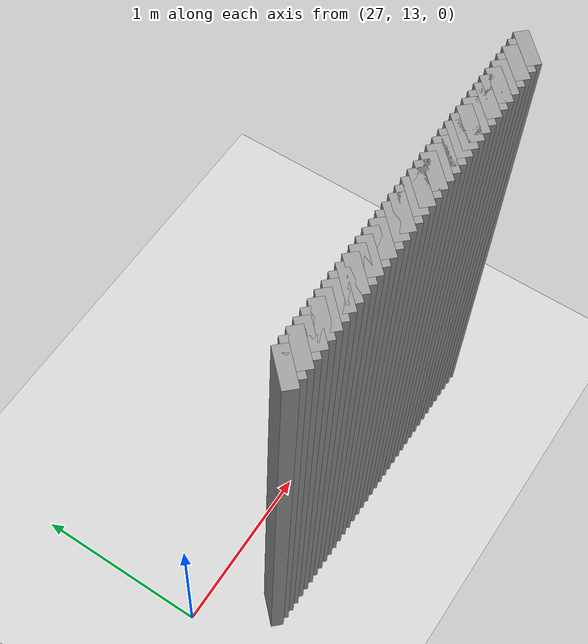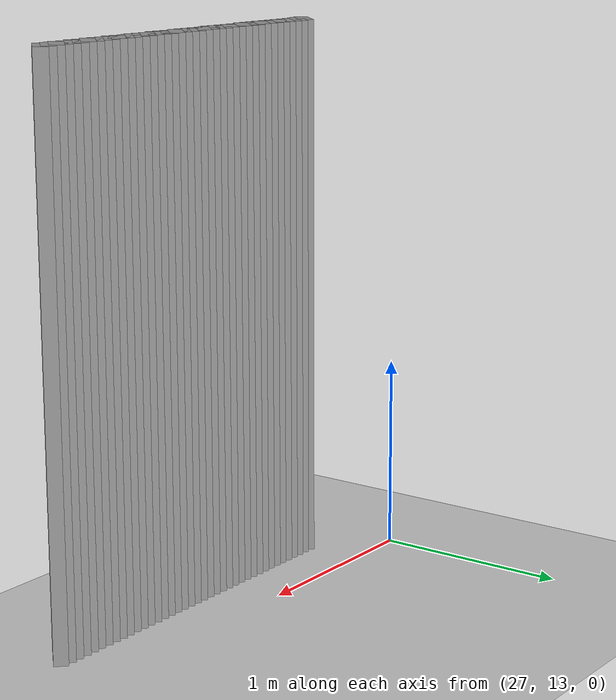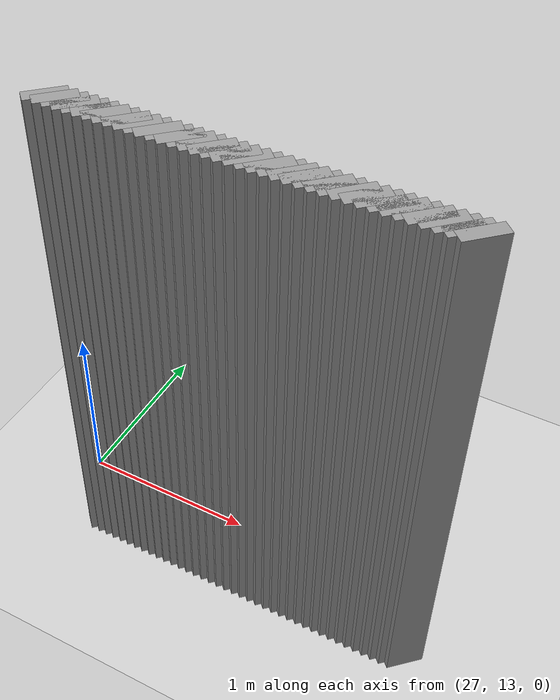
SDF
<sdf version="1.5">
 <world name="default">
  <include><uri>model://ground_plane</uri></include>
  <include><uri>model://sun</uri></include>
  <model name="grey_wall_2325">
   <static>1</static>
   <link name="link">
    <pose>27.3 12.65  1.4 0 0 -0.785398163397</pose>
    <collision name="collision"><geometry><box><size>0.0707106781187 .2  2.8</size></box></geometry></collision>
    <visual name="visual">
     <cast_shadows>0</cast_shadows>
     <geometry><box><size>0.0707106781187 .2  2.8</size></box></geometry>
     <material>
      <script>
       <uri>model://grey_wall/materials/scripts</uri>
       <uri>model://grey_wall/materials/textures</uri>
       <name>vrc/grey_wall</name>
      </script>
     </material>
    </visual>
   </link>
  </model>
  <model name="grey_wall_2326">
   <static>1</static>
   <link name="link">
    <pose>27.35 12.65  1.4 0 0 -0.785398163397</pose>
    <collision name="collision"><geometry><box><size>0.0707106781187 .2  2.8</size></box></geometry></collision>
    <visual name="visual">
     <cast_shadows>0</cast_shadows>
     <geometry><box><size>0.0707106781187 .2  2.8</size></box></geometry>
     <material>
      <script>
       <uri>model://grey_wall/materials/scripts</uri>
       <uri>model://grey_wall/materials/textures</uri>
       <name>vrc/grey_wall</name>
      </script>
     </material>
    </visual>
   </link>
  </model>
  <model name="grey_wall_2327">
   <static>1</static>
   <link name="link">
    <pose>27.4 12.65  1.4 0 0 -0.785398163397</pose>
    <collision name="collision"><geometry><box><size>0.0707106781187 .2  2.8</size></box></geometry></collision>
    <visual name="visual">
     <cast_shadows>0</cast_shadows>
     <geometry><box><size>0.0707106781187 .2  2.8</size></box></geometry>
     <material>
      <script>
       <uri>model://grey_wall/materials/scripts</uri>
       <uri>model://grey_wall/materials/textures</uri>
       <name>vrc/grey_wall</name>
      </script>
     </material>
    </visual>
   </link>
  </model>
  <model name="grey_wall_2328">
   <static>1</static>
   <link name="link">
    <pose>27.45 12.65  1.4 0 0 -0.785398163397</pose>
    <collision name="collision"><geometry><box><size>0.0707106781187 .2  2.8</size></box></geometry></collision>
    <visual name="visual">
     <cast_shadows>0</cast_shadows>
     <geometry><box><size>0.0707106781187 .2  2.8</size></box></geometry>
     <material>
      <script>
       <uri>model://grey_wall/materials/scripts</uri>
       <uri>model://grey_wall/materials/textures</uri>
       <name>vrc/grey_wall</name>
      </script>
     </material>
    </visual>
   </link>
  </model>
  <model name="grey_wall_2329">
   <static>1</static>
   <link name="link">
    <pose>27.5 12.65  1.4 0 0 -0.785398163397</pose>
    <collision name="collision"><geometry><box><size>0.0707106781187 .2  2.8</size></box></geometry></collision>
    <visual name="visual">
     <cast_shadows>0</cast_shadows>
     <geometry><box><size>0.0707106781187 .2  2.8</size></box></geometry>
     <material>
      <script>
       <uri>model://grey_wall/materials/scripts</uri>
       <uri>model://grey_wall/materials/textures</uri>
       <name>vrc/grey_wall</name>
      </script>
     </material>
    </visual>
   </link>
  </model>
  <model name="grey_wall_2330">
   <static>1</static>
   <link name="link">
    <pose>27.55 12.65  1.4 0 0 -0.785398163397</pose>
    <collision name="collision"><geometry><box><size>0.0707106781187 .2  2.8</size></box></geometry></collision>
    <visual name="visual">
     <cast_shadows>0</cast_shadows>
     <geometry><box><size>0.0707106781187 .2  2.8</size></box></geometry>
     <material>
      <script>
       <uri>model://grey_wall/materials/scripts</uri>
       <uri>model://grey_wall/materials/textures</uri>
       <name>vrc/grey_wall</name>
      </script>
     </material>
    </visual>
   </link>
  </model>
  <model name="grey_wall_2331">
   <static>1</static>
   <link name="link">
    <pose>27.6 12.65  1.4 0 0 -0.785398163397</pose>
    <collision name="collision"><geometry><box><size>0.0707106781187 .2  2.8</size></box></geometry></collision>
    <visual name="visual">
     <cast_shadows>0</cast_shadows>
     <geometry><box><size>0.0707106781187 .2  2.8</size></box></geometry>
     <material>
      <script>
       <uri>model://grey_wall/materials/scripts</uri>
       <uri>model://grey_wall/materials/textures</uri>
       <name>vrc/grey_wall</name>
      </script>
     </material>
    </visual>
   </link>
  </model>
  <model name="grey_wall_2332">
   <static>1</static>
   <link name="link">
    <pose>27.65 12.65  1.4 0 0 -0.785398163397</pose>
    <collision name="collision"><geometry><box><size>0.0707106781187 .2  2.8</size></box></geometry></collision>
    <visual name="visual">
     <cast_shadows>0</cast_shadows>
     <geometry><box><size>0.0707106781187 .2  2.8</size></box></geometry>
     <material>
      <script>
       <uri>model://grey_wall/materials/scripts</uri>
       <uri>model://grey_wall/materials/textures</uri>
       <name>vrc/grey_wall</name>
      </script>
     </material>
    </visual>
   </link>
  </model>
  <model name="grey_wall_2333">
   <static>1</static>
   <link name="link">
    <pose>27.7 12.65  1.4 0 0 -0.785398163397</pose>
    <collision name="collision"><geometry><box><size>0.0707106781187 .2  2.8</size></box></geometry></collision>
    <visual name="visual">
     <cast_shadows>0</cast_shadows>
     <geometry><box><size>0.0707106781187 .2  2.8</size></box></geometry>
     <material>
      <script>
       <uri>model://grey_wall/materials/scripts</uri>
       <uri>model://grey_wall/materials/textures</uri>
       <name>vrc/grey_wall</name>
      </script>
     </material>
    </visual>
   </link>
  </model>
  <model name="grey_wall_2334">
   <static>1</static>
   <link name="link">
    <pose>27.75 12.65  1.4 0 0 -0.785398163397</pose>
    <collision name="collision"><geometry><box><size>0.0707106781187 .2  2.8</size></box></geometry></collision>
    <visual name="visual">
     <cast_shadows>0</cast_shadows>
     <geometry><box><size>0.0707106781187 .2  2.8</size></box></geometry>
     <material>
      <script>
       <uri>model://grey_wall/materials/scripts</uri>
       <uri>model://grey_wall/materials/textures</uri>
       <name>vrc/grey_wall</name>
      </script>
     </material>
    </visual>
   </link>
  </model>
  <model name="grey_wall_2335">
   <static>1</static>
   <link name="link">
    <pose>27.8 12.65  1.4 0 0 -0.785398163397</pose>
    <collision name="collision"><geometry><box><size>0.0707106781187 .2  2.8</size></box></geometry></collision>
    <visual name="visual">
     <cast_shadows>0</cast_shadows>
     <geometry><box><size>0.0707106781187 .2  2.8</size></box></geometry>
     <material>
      <script>
       <uri>model://grey_wall/materials/scripts</uri>
       <uri>model://grey_wall/materials/textures</uri>
       <name>vrc/grey_wall</name>
      </script>
     </material>
    </visual>
   </link>
  </model>
  <model name="grey_wall_2336">
   <static>1</static>
   <link name="link">
    <pose>27.85 12.65  1.4 0 0 -0.785398163397</pose>
    <collision name="collision"><geometry><box><size>0.0707106781187 .2  2.8</size></box></geometry></collision>
    <visual name="visual">
     <cast_shadows>0</cast_shadows>
     <geometry><box><size>0.0707106781187 .2  2.8</size></box></geometry>
     <material>
      <script>
       <uri>model://grey_wall/materials/scripts</uri>
       <uri>model://grey_wall/materials/textures</uri>
       <name>vrc/grey_wall</name>
      </script>
     </material>
    </visual>
   </link>
  </model>
  <model name="grey_wall_2337">
   <static>1</static>
   <link name="link">
    <pose>27.9 12.65  1.4 0 0 -0.785398163397</pose>
    <collision name="collision"><geometry><box><size>0.0707106781187 .2  2.8</size></box></geometry></collision>
    <visual name="visual">
     <cast_shadows>0</cast_shadows>
     <geometry><box><size>0.0707106781187 .2  2.8</size></box></geometry>
     <material>
      <script>
       <uri>model://grey_wall/materials/scripts</uri>
       <uri>model://grey_wall/materials/textures</uri>
       <name>vrc/grey_wall</name>
      </script>
     </material>
    </visual>
   </link>
  </model>
  <model name="grey_wall_2338">
   <static>1</static>
   <link name="link">
    <pose>27.95 12.65  1.4 0 0 -0.785398163397</pose>
    <collision name="collision"><geometry><box><size>0.0707106781187 .2  2.8</size></box></geometry></collision>
    <visual name="visual">
     <cast_shadows>0</cast_shadows>
     <geometry><box><size>0.0707106781187 .2  2.8</size></box></geometry>
     <material>
      <script>
       <uri>model://grey_wall/materials/scripts</uri>
       <uri>model://grey_wall/materials/textures</uri>
       <name>vrc/grey_wall</name>
      </script>
     </material>
    </visual>
   </link>
  </model>
  <model name="grey_wall_2339">
   <static>1</static>
   <link name="link">
    <pose>28.0 12.65  1.4 0 0 -0.785398163397</pose>
    <collision name="collision"><geometry><box><size>0.0707106781187 .2  2.8</size></box></geometry></collision>
    <visual name="visual">
     <cast_shadows>0</cast_shadows>
     <geometry><box><size>0.0707106781187 .2  2.8</size></box></geometry>
     <material>
      <script>
       <uri>model://grey_wall/materials/scripts</uri>
       <uri>model://grey_wall/materials/textures</uri>
       <name>vrc/grey_wall</name>
      </script>
     </material>
    </visual>
   </link>
  </model>
  <model name="grey_wall_2340">
   <static>1</static>
   <link name="link">
    <pose>28.05 12.65  1.4 0 0 -0.785398163397</pose>
    <collision name="collision"><geometry><box><size>0.0707106781187 .2  2.8</size></box></geometry></collision>
    <visual name="visual">
     <cast_shadows>0</cast_shadows>
     <geometry><box><size>0.0707106781187 .2  2.8</size></box></geometry>
     <material>
      <script>
       <uri>model://grey_wall/materials/scripts</uri>
       <uri>model://grey_wall/materials/textures</uri>
       <name>vrc/grey_wall</name>
      </script>
     </material>
    </visual>
   </link>
  </model>
  <model name="grey_wall_2341">
   <static>1</static>
   <link name="link">
    <pose>28.1 12.65  1.4 0 0 -0.785398163397</pose>
    <collision name="collision"><geometry><box><size>0.0707106781187 .2  2.8</size></box></geometry></collision>
    <visual name="visual">
     <cast_shadows>0</cast_shadows>
     <geometry><box><size>0.0707106781187 .2  2.8</size></box></geometry>
     <material>
      <script>
       <uri>model://grey_wall/materials/scripts</uri>
       <uri>model://grey_wall/materials/textures</uri>
       <name>vrc/grey_wall</name>
      </script>
     </material>
    </visual>
   </link>
  </model>
  <model name="grey_wall_2342">
   <static>1</static>
   <link name="link">
    <pose>28.15 12.65  1.4 0 0 -0.785398163397</pose>
    <collision name="collision"><geometry><box><size>0.0707106781187 .2  2.8</size></box></geometry></collision>
    <visual name="visual">
     <cast_shadows>0</cast_shadows>
     <geometry><box><size>0.0707106781187 .2  2.8</size></box></geometry>
     <material>
      <script>
       <uri>model://grey_wall/materials/scripts</uri>
       <uri>model://grey_wall/materials/textures</uri>
       <name>vrc/grey_wall</name>
      </script>
     </material>
    </visual>
   </link>
  </model>
  <model name="grey_wall_2343">
   <static>1</static>
   <link name="link">
    <pose>28.2 12.65  1.4 0 0 -0.785398163397</pose>
    <collision name="collision"><geometry><box><size>0.0707106781187 .2  2.8</size></box></geometry></collision>
    <visual name="visual">
     <cast_shadows>0</cast_shadows>
     <geometry><box><size>0.0707106781187 .2  2.8</size></box></geometry>
     <material>
      <script>
       <uri>model://grey_wall/materials/scripts</uri>
       <uri>model://grey_wall/materials/textures</uri>
       <name>vrc/grey_wall</name>
      </script>
     </material>
    </visual>
   </link>
  </model>
  <model name="grey_wall_2344">
   <static>1</static>
   <link name="link">
    <pose>28.25 12.65  1.4 0 0 -0.785398163397</pose>
    <collision name="collision"><geometry><box><size>0.0707106781187 .2  2.8</size></box></geometry></collision>
    <visual name="visual">
     <cast_shadows>0</cast_shadows>
     <geometry><box><size>0.0707106781187 .2  2.8</size></box></geometry>
     <material>
      <script>
       <uri>model://grey_wall/materials/scripts</uri>
       <uri>model://grey_wall/materials/textures</uri>
       <name>vrc/grey_wall</name>
      </script>
     </material>
    </visual>
   </link>
  </model>
  <model name="grey_wall_2345">
   <static>1</static>
   <link name="link">
    <pose>28.3 12.65  1.4 0 0 -0.785398163397</pose>
    <collision name="collision"><geometry><box><size>0.0707106781187 .2  2.8</size></box></geometry></collision>
    <visual name="visual">
     <cast_shadows>0</cast_shadows>
     <geometry><box><size>0.0707106781187 .2  2.8</size></box></geometry>
     <material>
      <script>
       <uri>model://grey_wall/materials/scripts</uri>
       <uri>model://grey_wall/materials/textures</uri>
       <name>vrc/grey_wall</name>
      </script>
     </material>
    </visual>
   </link>
  </model>
  <model name="grey_wall_2346">
   <static>1</static>
   <link name="link">
    <pose>28.35 12.65  1.4 0 0 -0.785398163397</pose>
    <collision name="collision"><geometry><box><size>0.0707106781187 .2  2.8</size></box></geometry></collision>
    <visual name="visual">
     <cast_shadows>0</cast_shadows>
     <geometry><box><size>0.0707106781187 .2  2.8</size></box></geometry>
     <material>
      <script>
       <uri>model://grey_wall/materials/scripts</uri>
       <uri>model://grey_wall/materials/textures</uri>
       <name>vrc/grey_wall</name>
      </script>
     </material>
    </visual>
   </link>
  </model>
  <model name="grey_wall_2347">
   <static>1</static>
   <link name="link">
    <pose>28.4 12.65  1.4 0 0 -0.785398163397</pose>
    <collision name="collision"><geometry><box><size>0.0707106781187 .2  2.8</size></box></geometry></collision>
    <visual name="visual">
     <cast_shadows>0</cast_shadows>
     <geometry><box><size>0.0707106781187 .2  2.8</size></box></geometry>
     <material>
      <script>
       <uri>model://grey_wall/materials/scripts</uri>
       <uri>model://grey_wall/materials/textures</uri>
       <name>vrc/grey_wall</name>
      </script>
     </material>
    </visual>
   </link>
  </model>
  <model name="grey_wall_2348">
   <static>1</static>
   <link name="link">
    <pose>28.45 12.65  1.4 0 0 -0.785398163397</pose>
    <collision name="collision"><geometry><box><size>0.0707106781187 .2  2.8</size></box></geometry></collision>
    <visual name="visual">
     <cast_shadows>0</cast_shadows>
     <geometry><box><size>0.0707106781187 .2  2.8</size></box></geometry>
     <material>
      <script>
       <uri>model://grey_wall/materials/scripts</uri>
       <uri>model://grey_wall/materials/textures</uri>
       <name>vrc/grey_wall</name>
      </script>
     </material>
    </visual>
   </link>
  </model>
  <model name="grey_wall_2349">
   <static>1</static>
   <link name="link">
    <pose>28.5 12.65  1.4 0 0 -0.785398163397</pose>
    <collision name="collision"><geometry><box><size>0.0707106781187 .2  2.8</size></box></geometry></collision>
    <visual name="visual">
     <cast_shadows>0</cast_shadows>
     <geometry><box><size>0.0707106781187 .2  2.8</size></box></geometry>
     <material>
      <script>
       <uri>model://grey_wall/materials/scripts</uri>
       <uri>model://grey_wall/materials/textures</uri>
       <name>vrc/grey_wall</name>
      </script>
     </material>
    </visual>
   </link>
  </model>
  <model name="grey_wall_2350">
   <static>1</static>
   <link name="link">
    <pose>28.55 12.65  1.4 0 0 -0.785398163397</pose>
    <collision name="collision"><geometry><box><size>0.0707106781187 .2  2.8</size></box></geometry></collision>
    <visual name="visual">
     <cast_shadows>0</cast_shadows>
     <geometry><box><size>0.0707106781187 .2  2.8</size></box></geometry>
     <material>
      <script>
       <uri>model://grey_wall/materials/scripts</uri>
       <uri>model://grey_wall/materials/textures</uri>
       <name>vrc/grey_wall</name>
      </script>
     </material>
    </visual>
   </link>
  </model>
  <model name="grey_wall_2351">
   <static>1</static>
   <link name="link">
    <pose>28.6 12.65  1.4 0 0 -0.785398163397</pose>
    <collision name="collision"><geometry><box><size>0.0707106781187 .2  2.8</size></box></geometry></collision>
    <visual name="visual">
     <cast_shadows>0</cast_shadows>
     <geometry><box><size>0.0707106781187 .2  2.8</size></box></geometry>
     <material>
      <script>
       <uri>model://grey_wall/materials/scripts</uri>
       <uri>model://grey_wall/materials/textures</uri>
       <name>vrc/grey_wall</name>
      </script>
     </material>
    </visual>
   </link>
  </model>
  <model name="grey_wall_2352">
   <static>1</static>
   <link name="link">
    <pose>28.65 12.65  1.4 0 0 -0.785398163397</pose>
    <collision name="collision"><geometry><box><size>0.0707106781187 .2  2.8</size></box></geometry></collision>
    <visual name="visual">
     <cast_shadows>0</cast_shadows>
     <geometry><box><size>0.0707106781187 .2  2.8</size></box></geometry>
     <material>
      <script>
       <uri>model://grey_wall/materials/scripts</uri>
       <uri>model://grey_wall/materials/textures</uri>
       <name>vrc/grey_wall</name>
      </script>
     </material>
    </visual>
   </link>
  </model>
  <model name="grey_wall_2353">
   <static>1</static>
   <link name="link">
    <pose>28.7 12.65  1.4 0 0 -0.785398163397</pose>
    <collision name="collision"><geometry><box><size>0.0707106781187 .2  2.8</size></box></geometry></collision>
    <visual name="visual">
     <cast_shadows>0</cast_shadows>
     <geometry><box><size>0.0707106781187 .2  2.8</size></box></geometry>
     <material>
      <script>
       <uri>model://grey_wall/materials/scripts</uri>
       <uri>model://grey_wall/materials/textures</uri>
       <name>vrc/grey_wall</name>
      </script>
     </material>
    </visual>
   </link>
  </model>
  <model name="grey_wall_2354">
   <static>1</static>
   <link name="link">
    <pose>28.75 12.65  1.4 0 0 -0.785398163397</pose>
    <collision name="collision"><geometry><box><size>0.0707106781187 .2  2.8</size></box></geometry></collision>
    <visual name="visual">
     <cast_shadows>0</cast_shadows>
     <geometry><box><size>0.0707106781187 .2  2.8</size></box></geometry>
     <material>
      <script>
       <uri>model://grey_wall/materials/scripts</uri>
       <uri>model://grey_wall/materials/textures</uri>
       <name>vrc/grey_wall</name>
      </script>
     </material>
    </visual>
   </link>
  </model>
  <model name="grey_wall_2355">
   <static>1</static>
   <link name="link">
    <pose>28.8 12.65  1.4 0 0 -0.785398163397</pose>
    <collision name="collision"><geometry><box><size>0.0707106781187 .2  2.8</size></box></geometry></collision>
    <visual name="visual">
     <cast_shadows>0</cast_shadows>
     <geometry><box><size>0.0707106781187 .2  2.8</size></box></geometry>
     <material>
      <script>
       <uri>model://grey_wall/materials/scripts</uri>
       <uri>model://grey_wall/materials/textures</uri>
       <name>vrc/grey_wall</name>
      </script>
     </material>
    </visual>
   </link>
  </model>
  <model name="grey_wall_2356">
   <static>1</static>
   <link name="link">
    <pose>28.85 12.65  1.4 0 0 -0.785398163397</pose>
    <collision name="collision"><geometry><box><size>0.0707106781187 .2  2.8</size></box></geometry></collision>
    <visual name="visual">
     <cast_shadows>0</cast_shadows>
     <geometry><box><size>0.0707106781187 .2  2.8</size></box></geometry>
     <material>
      <script>
       <uri>model://grey_wall/materials/scripts</uri>
       <uri>model://grey_wall/materials/textures</uri>
       <name>vrc/grey_wall</name>
      </script>
     </material>
    </visual>
   </link>
  </model>
  <model name="grey_wall_2357">
   <static>1</static>
   <link name="link">
    <pose>28.9 12.65  1.4 0 0 -0.785398163397</pose>
    <collision name="collision"><geometry><box><size>0.0707106781187 .2  2.8</size></box></geometry></collision>
    <visual name="visual">
     <cast_shadows>0</cast_shadows>
     <geometry><box><size>0.0707106781187 .2  2.8</size></box></geometry>
     <material>
      <script>
       <uri>model://grey_wall/materials/scripts</uri>
       <uri>model://grey_wall/materials/textures</uri>
       <name>vrc/grey_wall</name>
      </script>
     </material>
    </visual>
   </link>
  </model>
  <model name="grey_wall_2358">
   <static>1</static>
   <link name="link">
    <pose>28.95 12.65  1.4 0 0 -0.785398163397</pose>
    <collision name="collision"><geometry><box><size>0.0707106781187 .2  2.8</size></box></geometry></collision>
    <visual name="visual">
     <cast_shadows>0</cast_shadows>
     <geometry><box><size>0.0707106781187 .2  2.8</size></box></geometry>
     <material>
      <script>
       <uri>model://grey_wall/materials/scripts</uri>
       <uri>model://grey_wall/materials/textures</uri>
       <name>vrc/grey_wall</name>
      </script>
     </material>
    </visual>
   </link>
  </model>
  <model name="grey_wall_2359">
   <static>1</static>
   <link name="link">
    <pose>29.0 12.65  1.4 0 0 -0.785398163397</pose>
    <collision name="collision"><geometry><box><size>0.0707106781187 .2  2.8</size></box></geometry></collision>
    <visual name="visual">
     <cast_shadows>0</cast_shadows>
     <geometry><box><size>0.0707106781187 .2  2.8</size></box></geometry>
     <material>
      <script>
       <uri>model://grey_wall/materials/scripts</uri>
       <uri>model://grey_wall/materials/textures</uri>
       <name>vrc/grey_wall</name>
      </script>
     </material>
    </visual>
   </link>
  </model>
  <model name="grey_wall_2360">
   <static>1</static>
   <link name="link">
    <pose>29.05 12.65  1.4 0 0 -0.785398163397</pose>
    <collision name="collision"><geometry><box><size>0.0707106781187 .2  2.8</size></box></geometry></collision>
    <visual name="visual">
     <cast_shadows>0</cast_shadows>
     <geometry><box><size>0.0707106781187 .2  2.8</size></box></geometry>
     <material>
      <script>
       <uri>model://grey_wall/materials/scripts</uri>
       <uri>model://grey_wall/materials/textures</uri>
       <name>vrc/grey_wall</name>
      </script>
     </material>
    </visual>
   </link>
  </model>
  <model name="grey_wall_2361">
   <static>1</static>
   <link name="link">
    <pose>29.1 12.65  1.4 0 0 -0.785398163397</pose>
    <collision name="collision"><geometry><box><size>0.0707106781187 .2  2.8</size></box></geometry></collision>
    <visual name="visual">
     <cast_shadows>0</cast_shadows>
     <geometry><box><size>0.0707106781187 .2  2.8</size></box></geometry>
     <material>
      <script>
       <uri>model://grey_wall/materials/scripts</uri>
       <uri>model://grey_wall/materials/textures</uri>
       <name>vrc/grey_wall</name>
      </script>
     </material>
    </visual>
   </link>
  </model>
  <model name="grey_wall_2362">
   <static>1</static>
   <link name="link">
    <pose>29.15 12.65  1.4 0 0 -0.785398163397</pose>
    <collision name="collision"><geometry><box><size>0.0707106781187 .2  2.8</size></box></geometry></collision>
    <visual name="visual">
     <cast_shadows>0</cast_shadows>
     <geometry><box><size>0.0707106781187 .2  2.8</size></box></geometry>
     <material>
      <script>
       <uri>model://grey_wall/materials/scripts</uri>
       <uri>model://grey_wall/materials/textures</uri>
       <name>vrc/grey_wall</name>
      </script>
     </material>
    </visual>
   </link>
  </model>
  <model name="grey_wall_2363">
   <static>1</static>
   <link name="link">
    <pose>29.2 12.65  1.4 0 0 -0.785398163397</pose>
    <collision name="collision"><geometry><box><size>0.0707106781187 .2  2.8</size></box></geometry></collision>
    <visual name="visual">
     <cast_shadows>0</cast_shadows>
     <geometry><box><size>0.0707106781187 .2  2.8</size></box></geometry>
     <material>
      <script>
       <uri>model://grey_wall/materials/scripts</uri>
       <uri>model://grey_wall/materials/textures</uri>
       <name>vrc/grey_wall</name>
      </script>
     </material>
    </visual>
   </link>
  </model>
 </world>
</sdf>
